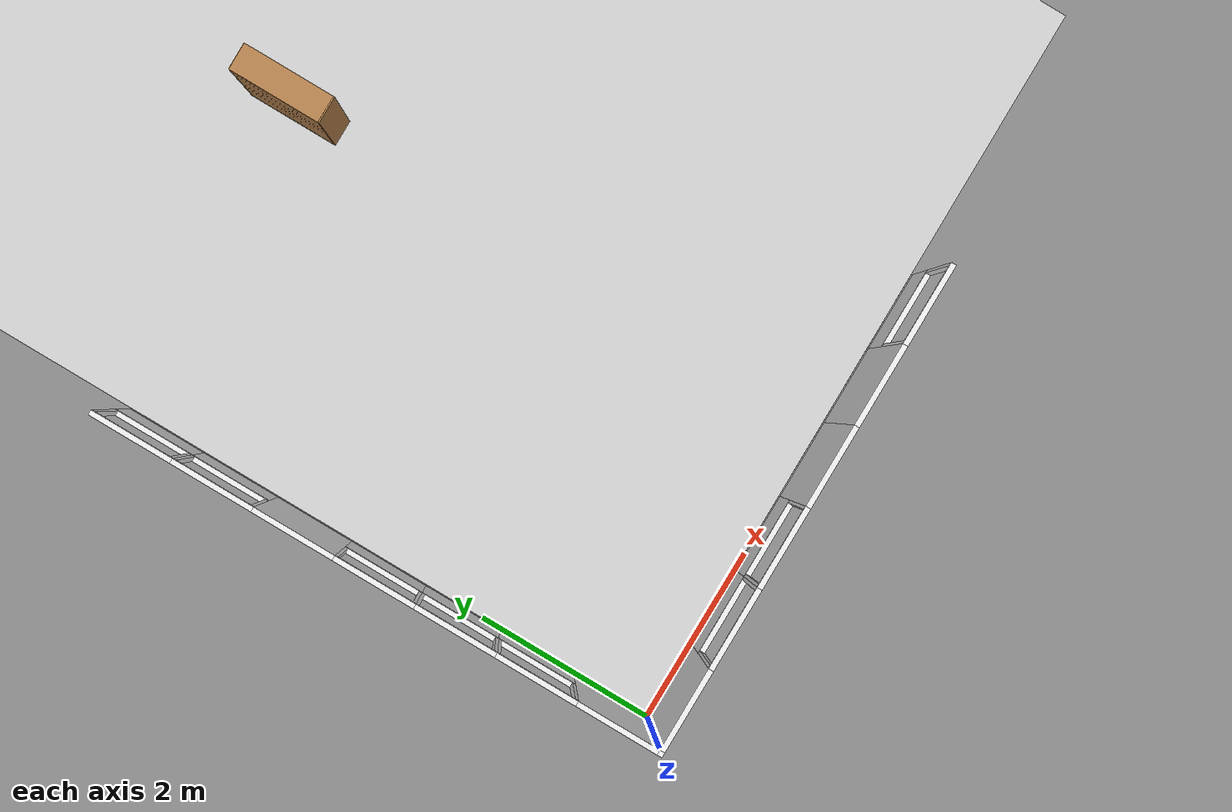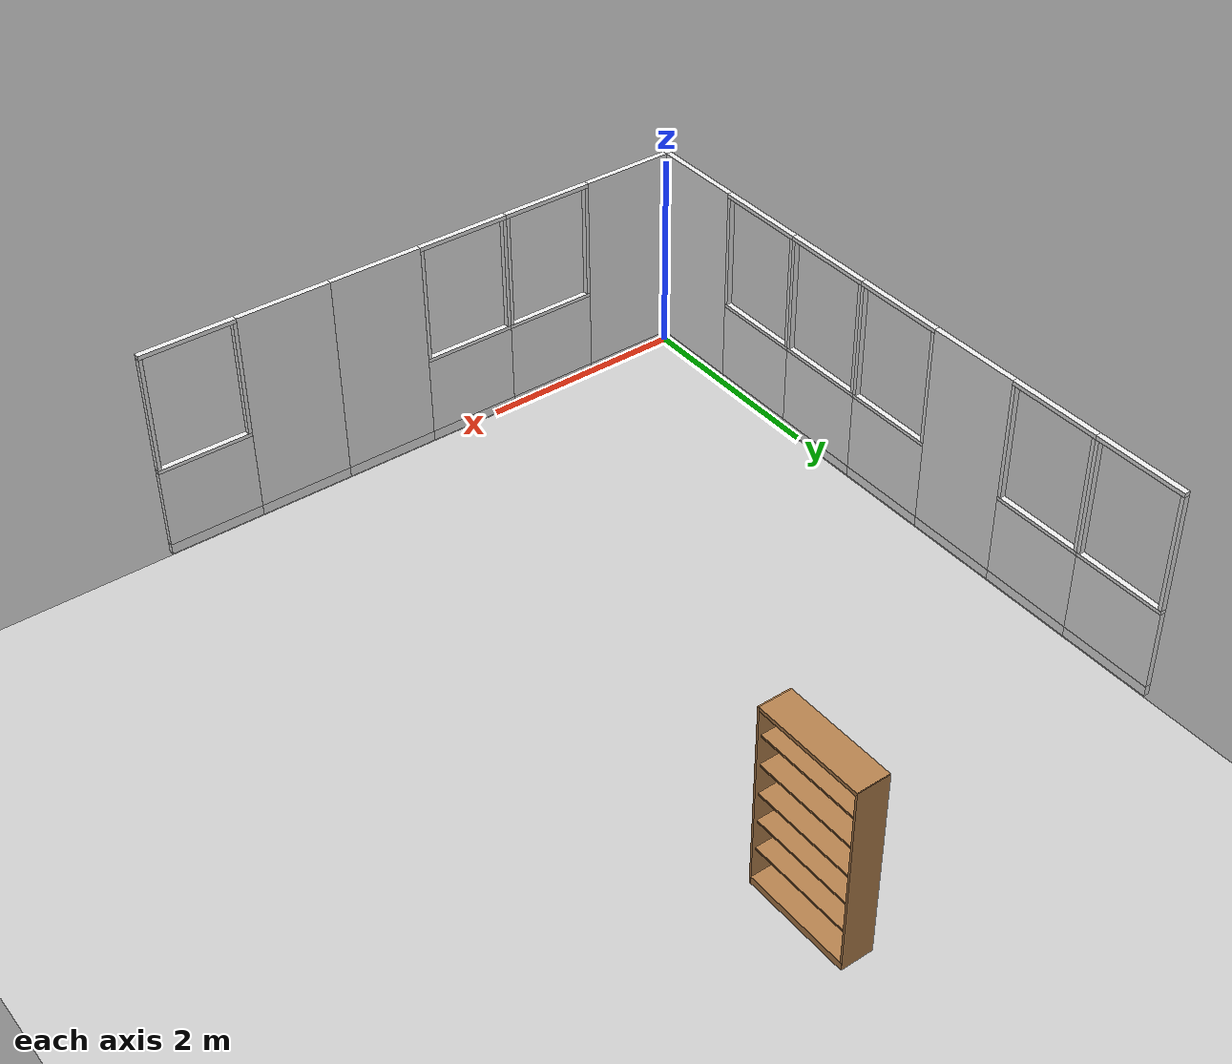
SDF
<sdf version="1.4">
 <world name="apartment">
  <model name="gplane">
   <pose>5.0375 6.59 0 0 -0 0</pose>
   <link name="body">
    <collision name="gplane_coll">
     <geometry><plane><normal>0 0 1</normal><size>10.075 13.18</size></plane></geometry>
     <surface><contact><ode><kp>1e+06</kp><kd>1</kd></ode></contact></surface>
     <laser_retro>2000</laser_retro>
    </collision>
    <visual name="gplane_vis">
     <geometry><plane><normal>0 0 1</normal><size>10.075 13.18</size></plane></geometry>
     <material>
      <script>
       <uri>model://base_materials/carpet/scripts</uri>
       <uri>model://base_materials/carpet/textures</uri>
       <name>carpet/carpet01</name>
      </script>
     </material>
     <cast_shadows>0</cast_shadows>
    </visual>
    <velocity_decay><linear>0</linear><angular>0</angular></velocity_decay>
   </link>
   <static>1</static>
  </model>
  <model name="wall_x00y00">
   <link name="link">
    <inertial>
     <mass>50</mass>
     <inertia><ixx>1</ixx><ixy>0</ixy><ixz>0</ixz><iyy>1</iyy><iyz>0</iyz><izz>1</izz></inertia>
    </inertial>
    <visual name="_frame">
     <pose>0 0 1.045 0 -0 0</pose>
     <geometry><box><size>0.055 0.055 2.09</size></box></geometry>
     <material>
      <script><uri>model://base_materials/color/scripts</uri><name>hsr_color/white</name></script>
     </material>
    </visual>
    <collision name="collision_frame">
     <pose>0 0 1.045 0 -0 0</pose>
     <geometry><box><size>0.055 0.055 2.09</size></box></geometry>
    </collision>
    <velocity_decay><linear>0</linear><angular>0</angular></velocity_decay>
   </link>
   <static>1</static>
   <pose>-0.0275 -0.0275 0 0 -0 0</pose>
  </model>
  <model name="wall_x00y01">
   <link name="link">
    <inertial>
     <mass>50</mass>
     <inertia><ixx>1</ixx><ixy>0</ixy><ixz>0</ixz><iyy>1</iyy><iyz>0</iyz><izz>1</izz></inertia>
    </inertial>
    <visual name="bottom_frame">
     <pose>0 0 0.05 0 -0 0</pose>
     <geometry><box><size>0.055 0.9 0.1</size></box></geometry>
     <material>
      <script><uri>model://base_materials/color/scripts</uri><name>hsr_color/white</name></script>
     </material>
    </visual>
    <collision name="collision_bottom_frame">
     <pose>0 0 0.05 0 -0 0</pose>
     <geometry><box><size>0.055 0.9 0.1</size></box></geometry>
    </collision>
    <visual name="wall">
     <pose>0 0 1.095 0 -0 0</pose>
     <geometry><box><size>0.055 0.9 1.99</size></box></geometry>
     <material>
      <script>
       <uri>model://base_materials/wall/scripts</uri>
       <uri>model://base_materials/wall/textures</uri>
       <name>wall/white_noise</name>
      </script>
     </material>
    </visual>
    <collision name="collision_wall">
     <pose>0 0 1.095 0 -0 0</pose>
     <geometry><box><size>0.055 0.9 1.99</size></box></geometry>
    </collision>
    <velocity_decay><linear>0</linear><angular>0</angular></velocity_decay>
   </link>
   <static>1</static>
   <pose>-0.0275 0.45 0 0 -0 0</pose>
  </model>
  <model name="wall_x00y02">
   <link name="link">
    <inertial>
     <mass>50</mass>
     <inertia><ixx>1</ixx><ixy>0</ixy><ixz>0</ixz><iyy>1</iyy><iyz>0</iyz><izz>1</izz></inertia>
    </inertial>
    <visual name="bottom_frame">
     <pose>0 0 0.05 0 -0 0</pose>
     <geometry><box><size>0.055 0.9 0.1</size></box></geometry>
     <material>
      <script><uri>model://base_materials/color/scripts</uri><name>hsr_color/white</name></script>
     </material>
    </visual>
    <collision name="collision_bottom_frame">
     <pose>0 0 0.05 0 -0 0</pose>
     <geometry><box><size>0.055 0.9 0.1</size></box></geometry>
    </collision>
    <visual name="wall">
     <pose>0 0 0.4875 0 -0 0</pose>
     <geometry><box><size>0.055 0.9 0.775</size></box></geometry>
     <material>
      <script>
       <uri>model://base_materials/wall/scripts</uri>
       <uri>model://base_materials/wall/textures</uri>
       <name>wall/white_noise</name>
      </script>
     </material>
    </visual>
    <collision name="collision_wall">
     <pose>0 0 0.4875 0 -0 0</pose>
     <geometry><box><size>0.055 0.9 0.775</size></box></geometry>
    </collision>
    <visual name="center_frame">
     <pose>0 0 0.8925 0 -0 0</pose>
     <geometry><box><size>0.055 0.9 0.035</size></box></geometry>
     <material>
      <script><uri>model://base_materials/color/scripts</uri><name>hsr_color/white</name></script>
     </material>
    </visual>
    <collision name="collision_center_frame">
     <pose>0 0 0.8925 0 -0 0</pose>
     <geometry><box><size>0.055 0.9 0.035</size></box></geometry>
    </collision>
    <visual name="right_frame">
     <pose>0 0.4325 1.48 0 -0 0</pose>
     <geometry><box><size>0.055 0.035 1.14</size></box></geometry>
     <material>
      <script><uri>model://base_materials/color/scripts</uri><name>hsr_color/white</name></script>
     </material>
    </visual>
    <collision name="collision_right_frame">
     <pose>0 0.4325 1.48 0 -0 0</pose>
     <geometry><box><size>0.055 0.035 1.14</size></box></geometry>
    </collision>
    <visual name="left_frame">
     <pose>0 -0.4325 1.48 0 -0 0</pose>
     <geometry><box><size>0.055 0.035 1.14</size></box></geometry>
     <material>
      <script><uri>model://base_materials/color/scripts</uri><name>hsr_color/white</name></script>
     </material>
    </visual>
    <collision name="collision_left_frame">
     <pose>0 -0.4325 1.48 0 -0 0</pose>
     <geometry><box><size>0.055 0.035 1.14</size></box></geometry>
    </collision>
    <visual name="top_frame">
     <pose>0 0 2.07 0 -0 0</pose>
     <geometry><box><size>0.055 0.9 0.04</size></box></geometry>
     <material>
      <script><uri>model://base_materials/color/scripts</uri><name>hsr_color/white</name></script>
     </material>
    </visual>
    <collision name="collision_top_frame">
     <pose>0 0 2.07 0 -0 0</pose>
     <geometry><box><size>0.055 0.9 0.04</size></box></geometry>
    </collision>
    <velocity_decay><linear>0</linear><angular>0</angular></velocity_decay>
   </link>
   <static>1</static>
   <pose>-0.0275 1.35 0 0 -0 0</pose>
  </model>
  <model name="wall_x00y03">
   <link name="link">
    <inertial>
     <mass>50</mass>
     <inertia><ixx>1</ixx><ixy>0</ixy><ixz>0</ixz><iyy>1</iyy><iyz>0</iyz><izz>1</izz></inertia>
    </inertial>
    <visual name="bottom_frame">
     <pose>0 0 0.05 0 -0 0</pose>
     <geometry><box><size>0.055 0.9 0.1</size></box></geometry>
     <material>
      <script><uri>model://base_materials/color/scripts</uri><name>hsr_color/white</name></script>
     </material>
    </visual>
    <collision name="collision_bottom_frame">
     <pose>0 0 0.05 0 -0 0</pose>
     <geometry><box><size>0.055 0.9 0.1</size></box></geometry>
    </collision>
    <visual name="wall">
     <pose>0 0 0.4875 0 -0 0</pose>
     <geometry><box><size>0.055 0.9 0.775</size></box></geometry>
     <material>
      <script>
       <uri>model://base_materials/wall/scripts</uri>
       <uri>model://base_materials/wall/textures</uri>
       <name>wall/white_noise</name>
      </script>
     </material>
    </visual>
    <collision name="collision_wall">
     <pose>0 0 0.4875 0 -0 0</pose>
     <geometry><box><size>0.055 0.9 0.775</size></box></geometry>
    </collision>
    <visual name="center_frame">
     <pose>0 0 0.8925 0 -0 0</pose>
     <geometry><box><size>0.055 0.9 0.035</size></box></geometry>
     <material>
      <script><uri>model://base_materials/color/scripts</uri><name>hsr_color/white</name></script>
     </material>
    </visual>
    <collision name="collision_center_frame">
     <pose>0 0 0.8925 0 -0 0</pose>
     <geometry><box><size>0.055 0.9 0.035</size></box></geometry>
    </collision>
    <visual name="right_frame">
     <pose>0 0.4325 1.48 0 -0 0</pose>
     <geometry><box><size>0.055 0.035 1.14</size></box></geometry>
     <material>
      <script><uri>model://base_materials/color/scripts</uri><name>hsr_color/white</name></script>
     </material>
    </visual>
    <collision name="collision_right_frame">
     <pose>0 0.4325 1.48 0 -0 0</pose>
     <geometry><box><size>0.055 0.035 1.14</size></box></geometry>
    </collision>
    <visual name="left_frame">
     <pose>0 -0.4325 1.48 0 -0 0</pose>
     <geometry><box><size>0.055 0.035 1.14</size></box></geometry>
     <material>
      <script><uri>model://base_materials/color/scripts</uri><name>hsr_color/white</name></script>
     </material>
    </visual>
    <collision name="collision_left_frame">
     <pose>0 -0.4325 1.48 0 -0 0</pose>
     <geometry><box><size>0.055 0.035 1.14</size></box></geometry>
    </collision>
    <visual name="top_frame">
     <pose>0 0 2.07 0 -0 0</pose>
     <geometry><box><size>0.055 0.9 0.04</size></box></geometry>
     <material>
      <script><uri>model://base_materials/color/scripts</uri><name>hsr_color/white</name></script>
     </material>
    </visual>
    <collision name="collision_top_frame">
     <pose>0 0 2.07 0 -0 0</pose>
     <geometry><box><size>0.055 0.9 0.04</size></box></geometry>
    </collision>
    <velocity_decay><linear>0</linear><angular>0</angular></velocity_decay>
   </link>
   <static>1</static>
   <pose>-0.0275 2.25 0 0 -0 0</pose>
  </model>
  <model name="wall_x00y04">
   <link name="link">
    <inertial>
     <mass>50</mass>
     <inertia><ixx>1</ixx><ixy>0</ixy><ixz>0</ixz><iyy>1</iyy><iyz>0</iyz><izz>1</izz></inertia>
    </inertial>
    <visual name="bottom_frame">
     <pose>0 0 0.05 0 -0 0</pose>
     <geometry><box><size>0.055 0.9 0.1</size></box></geometry>
     <material>
      <script><uri>model://base_materials/color/scripts</uri><name>hsr_color/white</name></script>
     </material>
    </visual>
    <collision name="collision_bottom_frame">
     <pose>0 0 0.05 0 -0 0</pose>
     <geometry><box><size>0.055 0.9 0.1</size></box></geometry>
    </collision>
    <visual name="wall">
     <pose>0 0 0.4875 0 -0 0</pose>
     <geometry><box><size>0.055 0.9 0.775</size></box></geometry>
     <material>
      <script>
       <uri>model://base_materials/wall/scripts</uri>
       <uri>model://base_materials/wall/textures</uri>
       <name>wall/white_noise</name>
      </script>
     </material>
    </visual>
    <collision name="collision_wall">
     <pose>0 0 0.4875 0 -0 0</pose>
     <geometry><box><size>0.055 0.9 0.775</size></box></geometry>
    </collision>
    <visual name="center_frame">
     <pose>0 0 0.8925 0 -0 0</pose>
     <geometry><box><size>0.055 0.9 0.035</size></box></geometry>
     <material>
      <script><uri>model://base_materials/color/scripts</uri><name>hsr_color/white</name></script>
     </material>
    </visual>
    <collision name="collision_center_frame">
     <pose>0 0 0.8925 0 -0 0</pose>
     <geometry><box><size>0.055 0.9 0.035</size></box></geometry>
    </collision>
    <visual name="right_frame">
     <pose>0 0.4325 1.48 0 -0 0</pose>
     <geometry><box><size>0.055 0.035 1.14</size></box></geometry>
     <material>
      <script><uri>model://base_materials/color/scripts</uri><name>hsr_color/white</name></script>
     </material>
    </visual>
    <collision name="collision_right_frame">
     <pose>0 0.4325 1.48 0 -0 0</pose>
     <geometry><box><size>0.055 0.035 1.14</size></box></geometry>
    </collision>
    <visual name="left_frame">
     <pose>0 -0.4325 1.48 0 -0 0</pose>
     <geometry><box><size>0.055 0.035 1.14</size></box></geometry>
     <material>
      <script><uri>model://base_materials/color/scripts</uri><name>hsr_color/white</name></script>
     </material>
    </visual>
    <collision name="collision_left_frame">
     <pose>0 -0.4325 1.48 0 -0 0</pose>
     <geometry><box><size>0.055 0.035 1.14</size></box></geometry>
    </collision>
    <visual name="top_frame">
     <pose>0 0 2.07 0 -0 0</pose>
     <geometry><box><size>0.055 0.9 0.04</size></box></geometry>
     <material>
      <script><uri>model://base_materials/color/scripts</uri><name>hsr_color/white</name></script>
     </material>
    </visual>
    <collision name="collision_top_frame">
     <pose>0 0 2.07 0 -0 0</pose>
     <geometry><box><size>0.055 0.9 0.04</size></box></geometry>
    </collision>
    <velocity_decay><linear>0</linear><angular>0</angular></velocity_decay>
   </link>
   <static>1</static>
   <pose>-0.0275 3.15 0 0 -0 0</pose>
  </model>
  <model name="wall_x00y05">
   <link name="link">
    <inertial>
     <mass>50</mass>
     <inertia><ixx>1</ixx><ixy>0</ixy><ixz>0</ixz><iyy>1</iyy><iyz>0</iyz><izz>1</izz></inertia>
    </inertial>
    <visual name="bottom_frame">
     <pose>0 0 0.05 0 -0 0</pose>
     <geometry><box><size>0.055 0.9 0.1</size></box></geometry>
     <material>
      <script><uri>model://base_materials/color/scripts</uri><name>hsr_color/white</name></script>
     </material>
    </visual>
    <collision name="collision_bottom_frame">
     <pose>0 0 0.05 0 -0 0</pose>
     <geometry><box><size>0.055 0.9 0.1</size></box></geometry>
    </collision>
    <visual name="wall">
     <pose>0 0 1.095 0 -0 0</pose>
     <geometry><box><size>0.055 0.9 1.99</size></box></geometry>
     <material>
      <script>
       <uri>model://base_materials/wall/scripts</uri>
       <uri>model://base_materials/wall/textures</uri>
       <name>wall/white_noise</name>
      </script>
     </material>
    </visual>
    <collision name="collision_wall">
     <pose>0 0 1.095 0 -0 0</pose>
     <geometry><box><size>0.055 0.9 1.99</size></box></geometry>
    </collision>
    <velocity_decay><linear>0</linear><angular>0</angular></velocity_decay>
   </link>
   <static>1</static>
   <pose>-0.0275 4.05 0 0 -0 0</pose>
  </model>
  <model name="wall_x00y06">
   <link name="link">
    <inertial>
     <mass>50</mass>
     <inertia><ixx>1</ixx><ixy>0</ixy><ixz>0</ixz><iyy>1</iyy><iyz>0</iyz><izz>1</izz></inertia>
    </inertial>
    <visual name="bottom_frame">
     <pose>0 0 0.05 0 -0 0</pose>
     <geometry><box><size>0.055 0.9 0.1</size></box></geometry>
     <material>
      <script><uri>model://base_materials/color/scripts</uri><name>hsr_color/white</name></script>
     </material>
    </visual>
    <collision name="collision_bottom_frame">
     <pose>0 0 0.05 0 -0 0</pose>
     <geometry><box><size>0.055 0.9 0.1</size></box></geometry>
    </collision>
    <visual name="wall">
     <pose>0 0 0.4875 0 -0 0</pose>
     <geometry><box><size>0.055 0.9 0.775</size></box></geometry>
     <material>
      <script>
       <uri>model://base_materials/wall/scripts</uri>
       <uri>model://base_materials/wall/textures</uri>
       <name>wall/white_noise</name>
      </script>
     </material>
    </visual>
    <collision name="collision_wall">
     <pose>0 0 0.4875 0 -0 0</pose>
     <geometry><box><size>0.055 0.9 0.775</size></box></geometry>
    </collision>
    <visual name="center_frame">
     <pose>0 0 0.8925 0 -0 0</pose>
     <geometry><box><size>0.055 0.9 0.035</size></box></geometry>
     <material>
      <script><uri>model://base_materials/color/scripts</uri><name>hsr_color/white</name></script>
     </material>
    </visual>
    <collision name="collision_center_frame">
     <pose>0 0 0.8925 0 -0 0</pose>
     <geometry><box><size>0.055 0.9 0.035</size></box></geometry>
    </collision>
    <visual name="right_frame">
     <pose>0 0.4325 1.48 0 -0 0</pose>
     <geometry><box><size>0.055 0.035 1.14</size></box></geometry>
     <material>
      <script><uri>model://base_materials/color/scripts</uri><name>hsr_color/white</name></script>
     </material>
    </visual>
    <collision name="collision_right_frame">
     <pose>0 0.4325 1.48 0 -0 0</pose>
     <geometry><box><size>0.055 0.035 1.14</size></box></geometry>
    </collision>
    <visual name="left_frame">
     <pose>0 -0.4325 1.48 0 -0 0</pose>
     <geometry><box><size>0.055 0.035 1.14</size></box></geometry>
     <material>
      <script><uri>model://base_materials/color/scripts</uri><name>hsr_color/white</name></script>
     </material>
    </visual>
    <collision name="collision_left_frame">
     <pose>0 -0.4325 1.48 0 -0 0</pose>
     <geometry><box><size>0.055 0.035 1.14</size></box></geometry>
    </collision>
    <visual name="top_frame">
     <pose>0 0 2.07 0 -0 0</pose>
     <geometry><box><size>0.055 0.9 0.04</size></box></geometry>
     <material>
      <script><uri>model://base_materials/color/scripts</uri><name>hsr_color/white</name></script>
     </material>
    </visual>
    <collision name="collision_top_frame">
     <pose>0 0 2.07 0 -0 0</pose>
     <geometry><box><size>0.055 0.9 0.04</size></box></geometry>
    </collision>
    <velocity_decay><linear>0</linear><angular>0</angular></velocity_decay>
   </link>
   <static>1</static>
   <pose>-0.0275 4.95 0 0 -0 0</pose>
  </model>
  <model name="wall_x00y07">
   <link name="link">
    <inertial>
     <mass>50</mass>
     <inertia><ixx>1</ixx><ixy>0</ixy><ixz>0</ixz><iyy>1</iyy><iyz>0</iyz><izz>1</izz></inertia>
    </inertial>
    <visual name="bottom_frame">
     <pose>0 0 0.05 0 -0 0</pose>
     <geometry><box><size>0.055 0.9 0.1</size></box></geometry>
     <material>
      <script><uri>model://base_materials/color/scripts</uri><name>hsr_color/white</name></script>
     </material>
    </visual>
    <collision name="collision_bottom_frame">
     <pose>0 0 0.05 0 -0 0</pose>
     <geometry><box><size>0.055 0.9 0.1</size></box></geometry>
    </collision>
    <visual name="wall">
     <pose>0 0 0.4875 0 -0 0</pose>
     <geometry><box><size>0.055 0.9 0.775</size></box></geometry>
     <material>
      <script>
       <uri>model://base_materials/wall/scripts</uri>
       <uri>model://base_materials/wall/textures</uri>
       <name>wall/white_noise</name>
      </script>
     </material>
    </visual>
    <collision name="collision_wall">
     <pose>0 0 0.4875 0 -0 0</pose>
     <geometry><box><size>0.055 0.9 0.775</size></box></geometry>
    </collision>
    <visual name="center_frame">
     <pose>0 0 0.8925 0 -0 0</pose>
     <geometry><box><size>0.055 0.9 0.035</size></box></geometry>
     <material>
      <script><uri>model://base_materials/color/scripts</uri><name>hsr_color/white</name></script>
     </material>
    </visual>
    <collision name="collision_center_frame">
     <pose>0 0 0.8925 0 -0 0</pose>
     <geometry><box><size>0.055 0.9 0.035</size></box></geometry>
    </collision>
    <visual name="right_frame">
     <pose>0 0.4325 1.48 0 -0 0</pose>
     <geometry><box><size>0.055 0.035 1.14</size></box></geometry>
     <material>
      <script><uri>model://base_materials/color/scripts</uri><name>hsr_color/white</name></script>
     </material>
    </visual>
    <collision name="collision_right_frame">
     <pose>0 0.4325 1.48 0 -0 0</pose>
     <geometry><box><size>0.055 0.035 1.14</size></box></geometry>
    </collision>
    <visual name="left_frame">
     <pose>0 -0.4325 1.48 0 -0 0</pose>
     <geometry><box><size>0.055 0.035 1.14</size></box></geometry>
     <material>
      <script><uri>model://base_materials/color/scripts</uri><name>hsr_color/white</name></script>
     </material>
    </visual>
    <collision name="collision_left_frame">
     <pose>0 -0.4325 1.48 0 -0 0</pose>
     <geometry><box><size>0.055 0.035 1.14</size></box></geometry>
    </collision>
    <visual name="top_frame">
     <pose>0 0 2.07 0 -0 0</pose>
     <geometry><box><size>0.055 0.9 0.04</size></box></geometry>
     <material>
      <script><uri>model://base_materials/color/scripts</uri><name>hsr_color/white</name></script>
     </material>
    </visual>
    <collision name="collision_top_frame">
     <pose>0 0 2.07 0 -0 0</pose>
     <geometry><box><size>0.055 0.9 0.04</size></box></geometry>
    </collision>
    <velocity_decay><linear>0</linear><angular>0</angular></velocity_decay>
   </link>
   <static>1</static>
   <pose>-0.0275 5.85 0 0 -0 0</pose>
  </model>
  <model name="wall_x01y00">
   <link name="link">
    <inertial>
     <mass>50</mass>
     <inertia><ixx>1</ixx><ixy>0</ixy><ixz>0</ixz><iyy>1</iyy><iyz>0</iyz><izz>1</izz></inertia>
    </inertial>
    <visual name="bottom_frame">
     <pose>0 0 0.05 0 -0 0</pose>
     <geometry><box><size>0.055 0.9 0.1</size></box></geometry>
     <material>
      <script><uri>model://base_materials/color/scripts</uri><name>hsr_color/white</name></script>
     </material>
    </visual>
    <collision name="collision_bottom_frame">
     <pose>0 0 0.05 0 -0 0</pose>
     <geometry><box><size>0.055 0.9 0.1</size></box></geometry>
    </collision>
    <visual name="wall">
     <pose>0 0 1.095 0 -0 0</pose>
     <geometry><box><size>0.055 0.9 1.99</size></box></geometry>
     <material>
      <script>
       <uri>model://base_materials/wall/scripts</uri>
       <uri>model://base_materials/wall/textures</uri>
       <name>wall/white_noise</name>
      </script>
     </material>
    </visual>
    <collision name="collision_wall">
     <pose>0 0 1.095 0 -0 0</pose>
     <geometry><box><size>0.055 0.9 1.99</size></box></geometry>
    </collision>
    <velocity_decay><linear>0</linear><angular>0</angular></velocity_decay>
   </link>
   <static>1</static>
   <pose>0.45 -0.0275 0 0 -0 1.5708</pose>
  </model>
  <model name="wall_x02y00">
   <link name="link">
    <inertial>
     <mass>50</mass>
     <inertia><ixx>1</ixx><ixy>0</ixy><ixz>0</ixz><iyy>1</iyy><iyz>0</iyz><izz>1</izz></inertia>
    </inertial>
    <visual name="bottom_frame">
     <pose>0 0 0.05 0 -0 0</pose>
     <geometry><box><size>0.055 0.9 0.1</size></box></geometry>
     <material>
      <script><uri>model://base_materials/color/scripts</uri><name>hsr_color/white</name></script>
     </material>
    </visual>
    <collision name="collision_bottom_frame">
     <pose>0 0 0.05 0 -0 0</pose>
     <geometry><box><size>0.055 0.9 0.1</size></box></geometry>
    </collision>
    <visual name="wall">
     <pose>0 0 0.4875 0 -0 0</pose>
     <geometry><box><size>0.055 0.9 0.775</size></box></geometry>
     <material>
      <script>
       <uri>model://base_materials/wall/scripts</uri>
       <uri>model://base_materials/wall/textures</uri>
       <name>wall/white_noise</name>
      </script>
     </material>
    </visual>
    <collision name="collision_wall">
     <pose>0 0 0.4875 0 -0 0</pose>
     <geometry><box><size>0.055 0.9 0.775</size></box></geometry>
    </collision>
    <visual name="center_frame">
     <pose>0 0 0.8925 0 -0 0</pose>
     <geometry><box><size>0.055 0.9 0.035</size></box></geometry>
     <material>
      <script><uri>model://base_materials/color/scripts</uri><name>hsr_color/white</name></script>
     </material>
    </visual>
    <collision name="collision_center_frame">
     <pose>0 0 0.8925 0 -0 0</pose>
     <geometry><box><size>0.055 0.9 0.035</size></box></geometry>
    </collision>
    <visual name="right_frame">
     <pose>0 0.4325 1.48 0 -0 0</pose>
     <geometry><box><size>0.055 0.035 1.14</size></box></geometry>
     <material>
      <script><uri>model://base_materials/color/scripts</uri><name>hsr_color/white</name></script>
     </material>
    </visual>
    <collision name="collision_right_frame">
     <pose>0 0.4325 1.48 0 -0 0</pose>
     <geometry><box><size>0.055 0.035 1.14</size></box></geometry>
    </collision>
    <visual name="left_frame">
     <pose>0 -0.4325 1.48 0 -0 0</pose>
     <geometry><box><size>0.055 0.035 1.14</size></box></geometry>
     <material>
      <script><uri>model://base_materials/color/scripts</uri><name>hsr_color/white</name></script>
     </material>
    </visual>
    <collision name="collision_left_frame">
     <pose>0 -0.4325 1.48 0 -0 0</pose>
     <geometry><box><size>0.055 0.035 1.14</size></box></geometry>
    </collision>
    <visual name="top_frame">
     <pose>0 0 2.07 0 -0 0</pose>
     <geometry><box><size>0.055 0.9 0.04</size></box></geometry>
     <material>
      <script><uri>model://base_materials/color/scripts</uri><name>hsr_color/white</name></script>
     </material>
    </visual>
    <collision name="collision_top_frame">
     <pose>0 0 2.07 0 -0 0</pose>
     <geometry><box><size>0.055 0.9 0.04</size></box></geometry>
    </collision>
    <velocity_decay><linear>0</linear><angular>0</angular></velocity_decay>
   </link>
   <static>1</static>
   <pose>1.35 -0.0275 0 0 -0 1.5708</pose>
  </model>
  <model name="wall_x03y00">
   <link name="link">
    <inertial>
     <mass>50</mass>
     <inertia><ixx>1</ixx><ixy>0</ixy><ixz>0</ixz><iyy>1</iyy><iyz>0</iyz><izz>1</izz></inertia>
    </inertial>
    <visual name="bottom_frame">
     <pose>0 0 0.05 0 -0 0</pose>
     <geometry><box><size>0.055 0.9 0.1</size></box></geometry>
     <material>
      <script><uri>model://base_materials/color/scripts</uri><name>hsr_color/white</name></script>
     </material>
    </visual>
    <collision name="collision_bottom_frame">
     <pose>0 0 0.05 0 -0 0</pose>
     <geometry><box><size>0.055 0.9 0.1</size></box></geometry>
    </collision>
    <visual name="wall">
     <pose>0 0 0.4875 0 -0 0</pose>
     <geometry><box><size>0.055 0.9 0.775</size></box></geometry>
     <material>
      <script>
       <uri>model://base_materials/wall/scripts</uri>
       <uri>model://base_materials/wall/textures</uri>
       <name>wall/white_noise</name>
      </script>
     </material>
    </visual>
    <collision name="collision_wall">
     <pose>0 0 0.4875 0 -0 0</pose>
     <geometry><box><size>0.055 0.9 0.775</size></box></geometry>
    </collision>
    <visual name="center_frame">
     <pose>0 0 0.8925 0 -0 0</pose>
     <geometry><box><size>0.055 0.9 0.035</size></box></geometry>
     <material>
      <script><uri>model://base_materials/color/scripts</uri><name>hsr_color/white</name></script>
     </material>
    </visual>
    <collision name="collision_center_frame">
     <pose>0 0 0.8925 0 -0 0</pose>
     <geometry><box><size>0.055 0.9 0.035</size></box></geometry>
    </collision>
    <visual name="right_frame">
     <pose>0 0.4325 1.48 0 -0 0</pose>
     <geometry><box><size>0.055 0.035 1.14</size></box></geometry>
     <material>
      <script><uri>model://base_materials/color/scripts</uri><name>hsr_color/white</name></script>
     </material>
    </visual>
    <collision name="collision_right_frame">
     <pose>0 0.4325 1.48 0 -0 0</pose>
     <geometry><box><size>0.055 0.035 1.14</size></box></geometry>
    </collision>
    <visual name="left_frame">
     <pose>0 -0.4325 1.48 0 -0 0</pose>
     <geometry><box><size>0.055 0.035 1.14</size></box></geometry>
     <material>
      <script><uri>model://base_materials/color/scripts</uri><name>hsr_color/white</name></script>
     </material>
    </visual>
    <collision name="collision_left_frame">
     <pose>0 -0.4325 1.48 0 -0 0</pose>
     <geometry><box><size>0.055 0.035 1.14</size></box></geometry>
    </collision>
    <visual name="top_frame">
     <pose>0 0 2.07 0 -0 0</pose>
     <geometry><box><size>0.055 0.9 0.04</size></box></geometry>
     <material>
      <script><uri>model://base_materials/color/scripts</uri><name>hsr_color/white</name></script>
     </material>
    </visual>
    <collision name="collision_top_frame">
     <pose>0 0 2.07 0 -0 0</pose>
     <geometry><box><size>0.055 0.9 0.04</size></box></geometry>
    </collision>
    <velocity_decay><linear>0</linear><angular>0</angular></velocity_decay>
   </link>
   <static>1</static>
   <pose>2.25 -0.0275 0 0 -0 1.5708</pose>
  </model>
  <model name="wall_x04y00">
   <link name="link">
    <inertial>
     <mass>50</mass>
     <inertia><ixx>1</ixx><ixy>0</ixy><ixz>0</ixz><iyy>1</iyy><iyz>0</iyz><izz>1</izz></inertia>
    </inertial>
    <visual name="bottom_frame">
     <pose>0 0 0.05 0 -0 0</pose>
     <geometry><box><size>0.055 0.9 0.1</size></box></geometry>
     <material>
      <script><uri>model://base_materials/color/scripts</uri><name>hsr_color/white</name></script>
     </material>
    </visual>
    <collision name="collision_bottom_frame">
     <pose>0 0 0.05 0 -0 0</pose>
     <geometry><box><size>0.055 0.9 0.1</size></box></geometry>
    </collision>
    <visual name="wall">
     <pose>0 0 1.095 0 -0 0</pose>
     <geometry><box><size>0.055 0.9 1.99</size></box></geometry>
     <material>
      <script>
       <uri>model://base_materials/wall/scripts</uri>
       <uri>model://base_materials/wall/textures</uri>
       <name>wall/white_noise</name>
      </script>
     </material>
    </visual>
    <collision name="collision_wall">
     <pose>0 0 1.095 0 -0 0</pose>
     <geometry><box><size>0.055 0.9 1.99</size></box></geometry>
    </collision>
    <velocity_decay><linear>0</linear><angular>0</angular></velocity_decay>
   </link>
   <static>1</static>
   <pose>3.15 -0.0275 0 0 -0 1.5708</pose>
  </model>
  <model name="wall_x05y00">
   <link name="link">
    <inertial>
     <mass>50</mass>
     <inertia><ixx>1</ixx><ixy>0</ixy><ixz>0</ixz><iyy>1</iyy><iyz>0</iyz><izz>1</izz></inertia>
    </inertial>
    <visual name="bottom_frame">
     <pose>0 0 0.05 0 -0 0</pose>
     <geometry><box><size>0.055 0.9 0.1</size></box></geometry>
     <material>
      <script><uri>model://base_materials/color/scripts</uri><name>hsr_color/white</name></script>
     </material>
    </visual>
    <collision name="collision_bottom_frame">
     <pose>0 0 0.05 0 -0 0</pose>
     <geometry><box><size>0.055 0.9 0.1</size></box></geometry>
    </collision>
    <visual name="wall">
     <pose>0 0 1.095 0 -0 0</pose>
     <geometry><box><size>0.055 0.9 1.99</size></box></geometry>
     <material>
      <script>
       <uri>model://base_materials/wall/scripts</uri>
       <uri>model://base_materials/wall/textures</uri>
       <name>wall/white_noise</name>
      </script>
     </material>
    </visual>
    <collision name="collision_wall">
     <pose>0 0 1.095 0 -0 0</pose>
     <geometry><box><size>0.055 0.9 1.99</size></box></geometry>
    </collision>
    <velocity_decay><linear>0</linear><angular>0</angular></velocity_decay>
   </link>
   <static>1</static>
   <pose>4.05 -0.0275 0 0 -0 1.5708</pose>
  </model>
  <model name="wall_x06y00">
   <link name="link">
    <inertial>
     <mass>50</mass>
     <inertia><ixx>1</ixx><ixy>0</ixy><ixz>0</ixz><iyy>1</iyy><iyz>0</iyz><izz>1</izz></inertia>
    </inertial>
    <visual name="bottom_frame">
     <pose>0 0 0.05 0 -0 0</pose>
     <geometry><box><size>0.055 0.9 0.1</size></box></geometry>
     <material>
      <script><uri>model://base_materials/color/scripts</uri><name>hsr_color/white</name></script>
     </material>
    </visual>
    <collision name="collision_bottom_frame">
     <pose>0 0 0.05 0 -0 0</pose>
     <geometry><box><size>0.055 0.9 0.1</size></box></geometry>
    </collision>
    <visual name="wall">
     <pose>0 0 0.4875 0 -0 0</pose>
     <geometry><box><size>0.055 0.9 0.775</size></box></geometry>
     <material>
      <script>
       <uri>model://base_materials/wall/scripts</uri>
       <uri>model://base_materials/wall/textures</uri>
       <name>wall/white_noise</name>
      </script>
     </material>
    </visual>
    <collision name="collision_wall">
     <pose>0 0 0.4875 0 -0 0</pose>
     <geometry><box><size>0.055 0.9 0.775</size></box></geometry>
    </collision>
    <visual name="center_frame">
     <pose>0 0 0.8925 0 -0 0</pose>
     <geometry><box><size>0.055 0.9 0.035</size></box></geometry>
     <material>
      <script><uri>model://base_materials/color/scripts</uri><name>hsr_color/white</name></script>
     </material>
    </visual>
    <collision name="collision_center_frame">
     <pose>0 0 0.8925 0 -0 0</pose>
     <geometry><box><size>0.055 0.9 0.035</size></box></geometry>
    </collision>
    <visual name="right_frame">
     <pose>0 0.4325 1.48 0 -0 0</pose>
     <geometry><box><size>0.055 0.035 1.14</size></box></geometry>
     <material>
      <script><uri>model://base_materials/color/scripts</uri><name>hsr_color/white</name></script>
     </material>
    </visual>
    <collision name="collision_right_frame">
     <pose>0 0.4325 1.48 0 -0 0</pose>
     <geometry><box><size>0.055 0.035 1.14</size></box></geometry>
    </collision>
    <visual name="left_frame">
     <pose>0 -0.4325 1.48 0 -0 0</pose>
     <geometry><box><size>0.055 0.035 1.14</size></box></geometry>
     <material>
      <script><uri>model://base_materials/color/scripts</uri><name>hsr_color/white</name></script>
     </material>
    </visual>
    <collision name="collision_left_frame">
     <pose>0 -0.4325 1.48 0 -0 0</pose>
     <geometry><box><size>0.055 0.035 1.14</size></box></geometry>
    </collision>
    <visual name="top_frame">
     <pose>0 0 2.07 0 -0 0</pose>
     <geometry><box><size>0.055 0.9 0.04</size></box></geometry>
     <material>
      <script><uri>model://base_materials/color/scripts</uri><name>hsr_color/white</name></script>
     </material>
    </visual>
    <collision name="collision_top_frame">
     <pose>0 0 2.07 0 -0 0</pose>
     <geometry><box><size>0.055 0.9 0.04</size></box></geometry>
    </collision>
    <velocity_decay><linear>0</linear><angular>0</angular></velocity_decay>
   </link>
   <static>1</static>
   <pose>4.95 -0.0275 0 0 -0 1.5708</pose>
  </model>
  <model name="high_shelf">
   <link name="link">
    <inertial>
     <mass>5</mass>
     <inertia><ixx>1</ixx><ixy>0</ixy><ixz>0</ixz><iyy>1</iyy><iyz>0</iyz><izz>1</izz></inertia>
    </inertial>
    <visual name="left_board">
     <pose>-0.1475 -0.28 0.898 0 -0 0</pose>
     <geometry><box><size>0.295 0.018 1.796</size></box></geometry>
     <material>
      <script>
       <uri>model://base_materials/wood/scripts</uri>
       <uri>model://base_materials/wood/textures</uri>
       <name>base_materials/light_wood</name>
      </script>
     </material>
    </visual>
    <collision name="collision_left_board">
     <pose>-0.1475 -0.28 0.898 0 -0 0</pose>
     <geometry><box><size>0.295 0.018 1.796</size></box></geometry>
    </collision>
    <visual name="right_board">
     <pose>-0.1475 0.721 0.898 0 -0 0</pose>
     <geometry><box><size>0.295 0.018 1.796</size></box></geometry>
     <material>
      <script>
       <uri>model://base_materials/wood/scripts</uri>
       <uri>model://base_materials/wood/textures</uri>
       <name>base_materials/light_wood</name>
      </script>
     </material>
    </visual>
    <collision name="collision_right_board">
     <pose>-0.1475 0.721 0.898 0 -0 0</pose>
     <geometry><box><size>0.295 0.018 1.796</size></box></geometry>
    </collision>
    <visual name="top_board">
     <pose>-0.1475 0.225 1.7825 0 -0 0</pose>
     <geometry><box><size>0.295 1 0.035</size></box></geometry>
     <material>
      <script>
       <uri>model://base_materials/wood/scripts</uri>
       <uri>model://base_materials/wood/textures</uri>
       <name>base_materials/light_wood</name>
      </script>
     </material>
    </visual>
    <collision name="collision_top_board">
     <pose>-0.1475 0.225 1.7825 0 -0 0</pose>
     <geometry><box><size>0.295 1 0.035</size></box></geometry>
    </collision>
    <visual name="1st_shelf">
     <pose>-0.162 0.225 1.51 0 -0 0</pose>
     <geometry><box><size>0.266 1 0.018</size></box></geometry>
     <material>
      <script>
       <uri>model://base_materials/wood/scripts</uri>
       <uri>model://base_materials/wood/textures</uri>
       <name>base_materials/light_wood</name>
      </script>
     </material>
    </visual>
    <collision name="collision_1st_shelf">
     <pose>-0.162 0.225 1.51 0 -0 0</pose>
     <geometry><box><size>0.266 1 0.018</size></box></geometry>
    </collision>
    <visual name="2nd_shelf">
     <pose>-0.162 0.225 1.22 0 -0 0</pose>
     <geometry><box><size>0.266 1 0.018</size></box></geometry>
     <material>
      <script>
       <uri>model://base_materials/wood/scripts</uri>
       <uri>model://base_materials/wood/textures</uri>
       <name>base_materials/light_wood</name>
      </script>
     </material>
    </visual>
    <collision name="collision_2nd_shelf">
     <pose>-0.162 0.225 1.22 0 -0 0</pose>
     <geometry><box><size>0.266 1 0.018</size></box></geometry>
    </collision>
    <visual name="3rd_shelf">
     <pose>-0.162 0.225 0.93 0 -0 0</pose>
     <geometry><box><size>0.266 1 0.018</size></box></geometry>
     <material>
      <script>
       <uri>model://base_materials/wood/scripts</uri>
       <uri>model://base_materials/wood/textures</uri>
       <name>base_materials/light_wood</name>
      </script>
     </material>
    </visual>
    <collision name="collision_3rd_shelf">
     <pose>-0.162 0.225 0.93 0 -0 0</pose>
     <geometry><box><size>0.266 1 0.018</size></box></geometry>
    </collision>
    <visual name="4th_shelf">
     <pose>-0.162 0.225 0.65 0 -0 0</pose>
     <geometry><box><size>0.266 1 0.018</size></box></geometry>
     <material>
      <script>
       <uri>model://base_materials/wood/scripts</uri>
       <uri>model://base_materials/wood/textures</uri>
       <name>base_materials/light_wood</name>
      </script>
     </material>
    </visual>
    <collision name="collision_4th_shelf">
     <pose>-0.162 0.225 0.65 0 -0 0</pose>
     <geometry><box><size>0.266 1 0.018</size></box></geometry>
    </collision>
    <visual name="5th_shelf">
     <pose>-0.162 0.225 0.36 0 -0 0</pose>
     <geometry><box><size>0.266 1 0.018</size></box></geometry>
     <material>
      <script>
       <uri>model://base_materials/wood/scripts</uri>
       <uri>model://base_materials/wood/textures</uri>
       <name>base_materials/light_wood</name>
      </script>
     </material>
    </visual>
    <collision name="collision_5th_shelf">
     <pose>-0.162 0.225 0.36 0 -0 0</pose>
     <geometry><box><size>0.266 1 0.018</size></box></geometry>
    </collision>
    <visual name="bottom_board">
     <pose>-0.1475 0.225 0.035 0 -0 0</pose>
     <geometry><box><size>0.295 1 0.07</size></box></geometry>
     <material>
      <script>
       <uri>model://base_materials/wood/scripts</uri>
       <uri>model://base_materials/wood/textures</uri>
       <name>base_materials/light_wood</name>
      </script>
     </material>
    </visual>
    <collision name="collision_bottom_board">
     <pose>-0.1475 0.225 0.035 0 -0 0</pose>
     <geometry><box><size>0.295 1 0.07</size></box></geometry>
    </collision>
    <visual name="back_board">
     <pose>-0.286 0.225 0.898 0 -0 0</pose>
     <geometry><box><size>0.018 1 1.796</size></box></geometry>
     <material>
      <script>
       <uri>model://base_materials/wood/scripts</uri>
       <uri>model://base_materials/wood/textures</uri>
       <name>base_materials/light_wood</name>
      </script>
     </material>
    </visual>
    <collision name="collision_back_board">
     <pose>-0.286 0.225 0.898 0 -0 0</pose>
     <geometry><box><size>0.018 1 1.796</size></box></geometry>
    </collision>
    <velocity_decay><linear>0</linear><angular>0</angular></velocity_decay>
   </link>
   <static>1</static>
   <pose>3.76133 6.17098 0 0 -0 0</pose>
  </model>
 </world>
</sdf>
